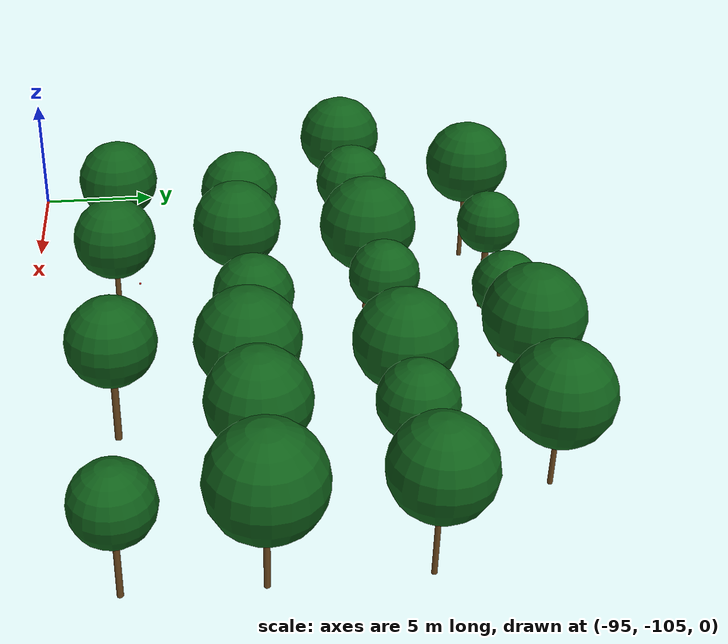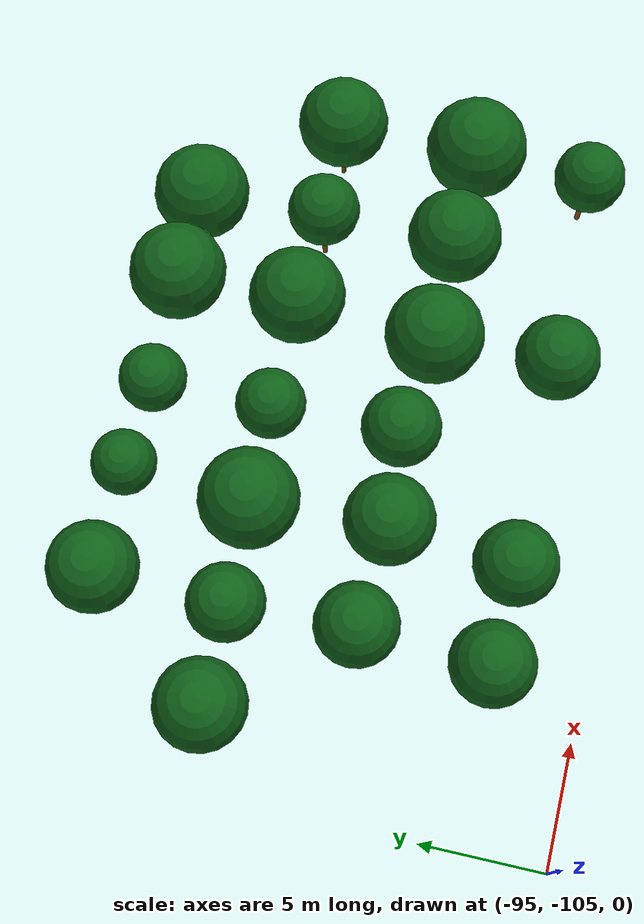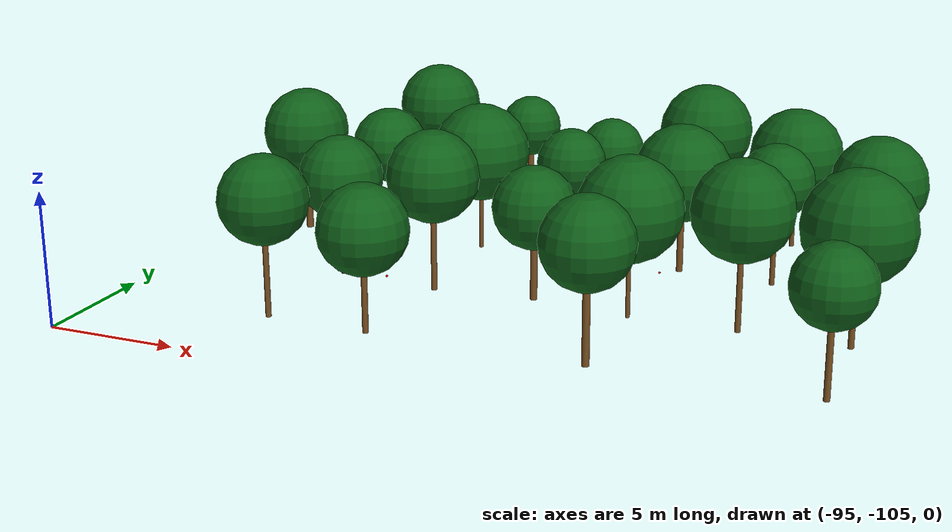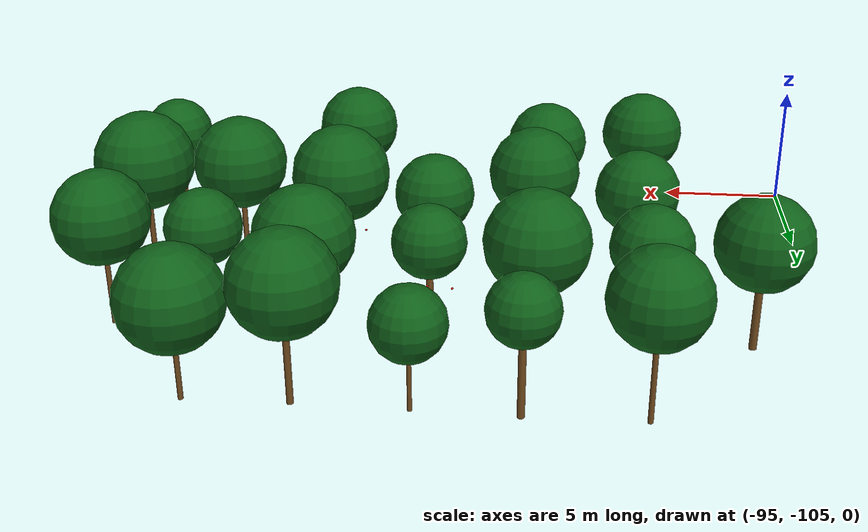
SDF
<sdf version="1.9">
 <world name="cheongsong_orchard">
  <model name="apple_tree_169">
   <static>true</static>
   <pose>-88.40 -101.20 0 0 0 0</pose>
   <link name="link">
    <collision name="trunk_col">
     <pose>0 0 1.39 0 0 0</pose>
     <geometry><cylinder><radius>0.105</radius><length>2.78</length></cylinder></geometry>
    </collision>
    <visual name="trunk_vis">
     <pose>0 0 1.39 0 0 0</pose>
     <geometry><cylinder><radius>0.105</radius><length>2.78</length></cylinder></geometry>
     <material><ambient>0.35 0.22 0.08 1</ambient><diffuse>0.45 0.30 0.12 1</diffuse></material>
    </visual>
    <collision name="canopy_col">
     <pose>0 0 4.42 0 0 0</pose>
     <geometry><sphere><radius>1.65</radius></sphere></geometry>
    </collision>
    <visual name="canopy_vis">
     <pose>0 0 4.42 0 0 0</pose>
     <geometry><sphere><radius>1.65</radius></sphere></geometry>
     <material><ambient>0.04 0.28 0.06 1</ambient><diffuse>0.06 0.38 0.10 1</diffuse></material>
    </visual>
   </link>
  </model>
  <model name="apple_tree_170">
   <static>true</static>
   <pose>-84.42 -101.32 0 0 0 0</pose>
   <link name="link">
    <collision name="trunk_col">
     <pose>0 0 1.09 0 0 0</pose>
     <geometry><cylinder><radius>0.110</radius><length>2.17</length></cylinder></geometry>
    </collision>
    <visual name="trunk_vis">
     <pose>0 0 1.09 0 0 0</pose>
     <geometry><cylinder><radius>0.110</radius><length>2.17</length></cylinder></geometry>
     <material><ambient>0.35 0.22 0.08 1</ambient><diffuse>0.45 0.30 0.12 1</diffuse></material>
    </visual>
    <collision name="canopy_col">
     <pose>0 0 3.82 0 0 0</pose>
     <geometry><sphere><radius>1.65</radius></sphere></geometry>
    </collision>
    <visual name="canopy_vis">
     <pose>0 0 3.82 0 0 0</pose>
     <geometry><sphere><radius>1.65</radius></sphere></geometry>
     <material><ambient>0.04 0.28 0.06 1</ambient><diffuse>0.06 0.38 0.10 1</diffuse></material>
    </visual>
   </link>
  </model>
  <model name="apple_tree_172">
   <static>true</static>
   <pose>-76.28 -101.27 0 0 0 0</pose>
   <link name="link">
    <collision name="trunk_col">
     <pose>0 0 1.33 0 0 0</pose>
     <geometry><cylinder><radius>0.134</radius><length>2.65</length></cylinder></geometry>
    </collision>
    <visual name="trunk_vis">
     <pose>0 0 1.33 0 0 0</pose>
     <geometry><cylinder><radius>0.134</radius><length>2.65</length></cylinder></geometry>
     <material><ambient>0.35 0.22 0.08 1</ambient><diffuse>0.45 0.30 0.12 1</diffuse></material>
    </visual>
    <collision name="canopy_col">
     <pose>0 0 4.31 0 0 0</pose>
     <geometry><sphere><radius>1.65</radius></sphere></geometry>
    </collision>
    <visual name="canopy_vis">
     <pose>0 0 4.31 0 0 0</pose>
     <geometry><sphere><radius>1.65</radius></sphere></geometry>
     <material><ambient>0.04 0.28 0.06 1</ambient><diffuse>0.06 0.38 0.10 1</diffuse></material>
    </visual>
   </link>
  </model>
  <model name="apple_tree_174">
   <static>true</static>
   <pose>-68.33 -101.09 0 0 0 0</pose>
   <link name="link">
    <collision name="trunk_col">
     <pose>0 0 1.21 0 0 0</pose>
     <geometry><cylinder><radius>0.111</radius><length>2.42</length></cylinder></geometry>
    </collision>
    <visual name="trunk_vis">
     <pose>0 0 1.21 0 0 0</pose>
     <geometry><cylinder><radius>0.111</radius><length>2.42</length></cylinder></geometry>
     <material><ambient>0.35 0.22 0.08 1</ambient><diffuse>0.45 0.30 0.12 1</diffuse></material>
    </visual>
    <collision name="canopy_col">
     <pose>0 0 3.84 0 0 0</pose>
     <geometry><sphere><radius>1.42</radius></sphere></geometry>
    </collision>
    <visual name="canopy_vis">
     <pose>0 0 3.84 0 0 0</pose>
     <geometry><sphere><radius>1.42</radius></sphere></geometry>
     <material><ambient>0.04 0.28 0.06 1</ambient><diffuse>0.06 0.38 0.10 1</diffuse></material>
    </visual>
   </link>
  </model>
  <model name="apple_tree_217">
   <static>true</static>
   <pose>-88.03 -96.05 0 0 0 0</pose>
   <link name="link">
    <collision name="trunk_col">
     <pose>0 0 1.14 0 0 0</pose>
     <geometry><cylinder><radius>0.083</radius><length>2.27</length></cylinder></geometry>
    </collision>
    <visual name="trunk_vis">
     <pose>0 0 1.14 0 0 0</pose>
     <geometry><cylinder><radius>0.083</radius><length>2.27</length></cylinder></geometry>
     <material><ambient>0.35 0.22 0.08 1</ambient><diffuse>0.45 0.30 0.12 1</diffuse></material>
    </visual>
    <collision name="canopy_col">
     <pose>0 0 3.91 0 0 0</pose>
     <geometry><sphere><radius>1.64</radius></sphere></geometry>
    </collision>
    <visual name="canopy_vis">
     <pose>0 0 3.91 0 0 0</pose>
     <geometry><sphere><radius>1.64</radius></sphere></geometry>
     <material><ambient>0.04 0.28 0.06 1</ambient><diffuse>0.06 0.38 0.10 1</diffuse></material>
    </visual>
   </link>
  </model>
  <model name="apple_tree_218">
   <static>true</static>
   <pose>-84.00 -96.38 0 0 0 0</pose>
   <link name="link">
    <collision name="trunk_col">
     <pose>0 0 1.35 0 0 0</pose>
     <geometry><cylinder><radius>0.113</radius><length>2.71</length></cylinder></geometry>
    </collision>
    <visual name="trunk_vis">
     <pose>0 0 1.35 0 0 0</pose>
     <geometry><cylinder><radius>0.113</radius><length>2.71</length></cylinder></geometry>
     <material><ambient>0.35 0.22 0.08 1</ambient><diffuse>0.45 0.30 0.12 1</diffuse></material>
    </visual>
    <collision name="canopy_col">
     <pose>0 0 4.47 0 0 0</pose>
     <geometry><sphere><radius>1.76</radius></sphere></geometry>
    </collision>
    <visual name="canopy_vis">
     <pose>0 0 4.47 0 0 0</pose>
     <geometry><sphere><radius>1.76</radius></sphere></geometry>
     <material><ambient>0.04 0.28 0.06 1</ambient><diffuse>0.06 0.38 0.10 1</diffuse></material>
    </visual>
   </link>
  </model>
  <model name="apple_tree_219">
   <static>true</static>
   <pose>-80.11 -96.00 0 0 0 0</pose>
   <link name="link">
    <collision name="trunk_col">
     <pose>0 0 1.01 0 0 0</pose>
     <geometry><cylinder><radius>0.134</radius><length>2.01</length></cylinder></geometry>
    </collision>
    <visual name="trunk_vis">
     <pose>0 0 1.01 0 0 0</pose>
     <geometry><cylinder><radius>0.134</radius><length>2.01</length></cylinder></geometry>
     <material><ambient>0.35 0.22 0.08 1</ambient><diffuse>0.45 0.30 0.12 1</diffuse></material>
    </visual>
    <collision name="canopy_col">
     <pose>0 0 3.58 0 0 0</pose>
     <geometry><sphere><radius>1.57</radius></sphere></geometry>
    </collision>
    <visual name="canopy_vis">
     <pose>0 0 3.58 0 0 0</pose>
     <geometry><sphere><radius>1.57</radius></sphere></geometry>
     <material><ambient>0.04 0.28 0.06 1</ambient><diffuse>0.06 0.38 0.10 1</diffuse></material>
    </visual>
   </link>
  </model>
  <model name="apple_tree_220">
   <static>true</static>
   <pose>-76.31 -96.46 0 0 0 0</pose>
   <link name="link">
    <collision name="trunk_col">
     <pose>0 0 1.07 0 0 0</pose>
     <geometry><cylinder><radius>0.083</radius><length>2.14</length></cylinder></geometry>
    </collision>
    <visual name="trunk_vis">
     <pose>0 0 1.07 0 0 0</pose>
     <geometry><cylinder><radius>0.083</radius><length>2.14</length></cylinder></geometry>
     <material><ambient>0.35 0.22 0.08 1</ambient><diffuse>0.45 0.30 0.12 1</diffuse></material>
    </visual>
    <collision name="canopy_col">
     <pose>0 0 4.09 0 0 0</pose>
     <geometry><sphere><radius>1.95</radius></sphere></geometry>
    </collision>
    <visual name="canopy_vis">
     <pose>0 0 4.09 0 0 0</pose>
     <geometry><sphere><radius>1.95</radius></sphere></geometry>
     <material><ambient>0.04 0.28 0.06 1</ambient><diffuse>0.06 0.38 0.10 1</diffuse></material>
    </visual>
   </link>
  </model>
  <model name="apple_tree_221">
   <static>true</static>
   <pose>-72.29 -96.38 0 0 0 0</pose>
   <link name="link">
    <collision name="trunk_col">
     <pose>0 0 1.31 0 0 0</pose>
     <geometry><cylinder><radius>0.106</radius><length>2.62</length></cylinder></geometry>
    </collision>
    <visual name="trunk_vis">
     <pose>0 0 1.31 0 0 0</pose>
     <geometry><cylinder><radius>0.106</radius><length>2.62</length></cylinder></geometry>
     <material><ambient>0.35 0.22 0.08 1</ambient><diffuse>0.45 0.30 0.12 1</diffuse></material>
    </visual>
    <collision name="canopy_col">
     <pose>0 0 4.46 0 0 0</pose>
     <geometry><sphere><radius>1.84</radius></sphere></geometry>
    </collision>
    <visual name="canopy_vis">
     <pose>0 0 4.46 0 0 0</pose>
     <geometry><sphere><radius>1.84</radius></sphere></geometry>
     <material><ambient>0.04 0.28 0.06 1</ambient><diffuse>0.06 0.38 0.10 1</diffuse></material>
    </visual>
   </link>
  </model>
  <model name="apple_tree_222">
   <static>true</static>
   <pose>-68.33 -96.44 0 0 0 0</pose>
   <link name="link">
    <collision name="trunk_col">
     <pose>0 0 1.18 0 0 0</pose>
     <geometry><cylinder><radius>0.110</radius><length>2.36</length></cylinder></geometry>
    </collision>
    <visual name="trunk_vis">
     <pose>0 0 1.18 0 0 0</pose>
     <geometry><cylinder><radius>0.110</radius><length>2.36</length></cylinder></geometry>
     <material><ambient>0.35 0.22 0.08 1</ambient><diffuse>0.45 0.30 0.12 1</diffuse></material>
    </visual>
    <collision name="canopy_col">
     <pose>0 0 4.36 0 0 0</pose>
     <geometry><sphere><radius>2.00</radius></sphere></geometry>
    </collision>
    <visual name="canopy_vis">
     <pose>0 0 4.36 0 0 0</pose>
     <geometry><sphere><radius>2.00</radius></sphere></geometry>
     <material><ambient>0.04 0.28 0.06 1</ambient><diffuse>0.06 0.38 0.10 1</diffuse></material>
    </visual>
   </link>
  </model>
  <model name="apple_tree_267">
   <static>true</static>
   <pose>-92.20 -91.20 0 0 0 0</pose>
   <link name="link">
    <collision name="trunk_col">
     <pose>0 0 1.25 0 0 0</pose>
     <geometry><cylinder><radius>0.145</radius><length>2.50</length></cylinder></geometry>
    </collision>
    <visual name="trunk_vis">
     <pose>0 0 1.25 0 0 0</pose>
     <geometry><cylinder><radius>0.145</radius><length>2.50</length></cylinder></geometry>
     <material><ambient>0.35 0.22 0.08 1</ambient><diffuse>0.45 0.30 0.12 1</diffuse></material>
    </visual>
    <collision name="canopy_col">
     <pose>0 0 4.27 0 0 0</pose>
     <geometry><sphere><radius>1.78</radius></sphere></geometry>
    </collision>
    <visual name="canopy_vis">
     <pose>0 0 4.27 0 0 0</pose>
     <geometry><sphere><radius>1.78</radius></sphere></geometry>
     <material><ambient>0.04 0.28 0.06 1</ambient><diffuse>0.06 0.38 0.10 1</diffuse></material>
    </visual>
   </link>
  </model>
  <model name="apple_tree_268">
   <static>true</static>
   <pose>-88.32 -91.15 0 0 0 0</pose>
   <link name="link">
    <collision name="trunk_col">
     <pose>0 0 1.24 0 0 0</pose>
     <geometry><cylinder><radius>0.143</radius><length>2.48</length></cylinder></geometry>
    </collision>
    <visual name="trunk_vis">
     <pose>0 0 1.24 0 0 0</pose>
     <geometry><cylinder><radius>0.143</radius><length>2.48</length></cylinder></geometry>
     <material><ambient>0.35 0.22 0.08 1</ambient><diffuse>0.45 0.30 0.12 1</diffuse></material>
    </visual>
    <collision name="canopy_col">
     <pose>0 0 4.00 0 0 0</pose>
     <geometry><sphere><radius>1.52</radius></sphere></geometry>
    </collision>
    <visual name="canopy_vis">
     <pose>0 0 4.00 0 0 0</pose>
     <geometry><sphere><radius>1.52</radius></sphere></geometry>
     <material><ambient>0.04 0.28 0.06 1</ambient><diffuse>0.06 0.38 0.10 1</diffuse></material>
    </visual>
   </link>
  </model>
  <model name="apple_tree_269">
   <static>true</static>
   <pose>-84.28 -91.03 0 0 0 0</pose>
   <link name="link">
    <collision name="trunk_col">
     <pose>0 0 1.05 0 0 0</pose>
     <geometry><cylinder><radius>0.083</radius><length>2.09</length></cylinder></geometry>
    </collision>
    <visual name="trunk_vis">
     <pose>0 0 1.05 0 0 0</pose>
     <geometry><cylinder><radius>0.083</radius><length>2.09</length></cylinder></geometry>
     <material><ambient>0.35 0.22 0.08 1</ambient><diffuse>0.45 0.30 0.12 1</diffuse></material>
    </visual>
    <collision name="canopy_col">
     <pose>0 0 4.06 0 0 0</pose>
     <geometry><sphere><radius>1.96</radius></sphere></geometry>
    </collision>
    <visual name="canopy_vis">
     <pose>0 0 4.06 0 0 0</pose>
     <geometry><sphere><radius>1.96</radius></sphere></geometry>
     <material><ambient>0.04 0.28 0.06 1</ambient><diffuse>0.06 0.38 0.10 1</diffuse></material>
    </visual>
   </link>
  </model>
  <model name="apple_tree_270">
   <static>true</static>
   <pose>-80.44 -90.94 0 0 0 0</pose>
   <link name="link">
    <collision name="trunk_col">
     <pose>0 0 1.29 0 0 0</pose>
     <geometry><cylinder><radius>0.132</radius><length>2.59</length></cylinder></geometry>
    </collision>
    <visual name="trunk_vis">
     <pose>0 0 1.29 0 0 0</pose>
     <geometry><cylinder><radius>0.132</radius><length>2.59</length></cylinder></geometry>
     <material><ambient>0.35 0.22 0.08 1</ambient><diffuse>0.45 0.30 0.12 1</diffuse></material>
    </visual>
    <collision name="canopy_col">
     <pose>0 0 3.96 0 0 0</pose>
     <geometry><sphere><radius>1.37</radius></sphere></geometry>
    </collision>
    <visual name="canopy_vis">
     <pose>0 0 3.96 0 0 0</pose>
     <geometry><sphere><radius>1.37</radius></sphere></geometry>
     <material><ambient>0.04 0.28 0.06 1</ambient><diffuse>0.06 0.38 0.10 1</diffuse></material>
    </visual>
   </link>
  </model>
  <model name="apple_tree_271">
   <static>true</static>
   <pose>-75.91 -90.90 0 0 0 0</pose>
   <link name="link">
    <collision name="trunk_col">
     <pose>0 0 1.05 0 0 0</pose>
     <geometry><cylinder><radius>0.126</radius><length>2.10</length></cylinder></geometry>
    </collision>
    <visual name="trunk_vis">
     <pose>0 0 1.05 0 0 0</pose>
     <geometry><cylinder><radius>0.126</radius><length>2.10</length></cylinder></geometry>
     <material><ambient>0.35 0.22 0.08 1</ambient><diffuse>0.45 0.30 0.12 1</diffuse></material>
    </visual>
    <collision name="canopy_col">
     <pose>0 0 4.01 0 0 0</pose>
     <geometry><sphere><radius>1.90</radius></sphere></geometry>
    </collision>
    <visual name="canopy_vis">
     <pose>0 0 4.01 0 0 0</pose>
     <geometry><sphere><radius>1.90</radius></sphere></geometry>
     <material><ambient>0.04 0.28 0.06 1</ambient><diffuse>0.06 0.38 0.10 1</diffuse></material>
    </visual>
   </link>
  </model>
  <model name="apple_tree_272">
   <static>true</static>
   <pose>-72.20 -91.10 0 0 0 0</pose>
   <link name="link">
    <collision name="trunk_col">
     <pose>0 0 1.34 0 0 0</pose>
     <geometry><cylinder><radius>0.100</radius><length>2.69</length></cylinder></geometry>
    </collision>
    <visual name="trunk_vis">
     <pose>0 0 1.34 0 0 0</pose>
     <geometry><cylinder><radius>0.100</radius><length>2.69</length></cylinder></geometry>
     <material><ambient>0.35 0.22 0.08 1</ambient><diffuse>0.45 0.30 0.12 1</diffuse></material>
    </visual>
    <collision name="canopy_col">
     <pose>0 0 4.12 0 0 0</pose>
     <geometry><sphere><radius>1.43</radius></sphere></geometry>
    </collision>
    <visual name="canopy_vis">
     <pose>0 0 4.12 0 0 0</pose>
     <geometry><sphere><radius>1.43</radius></sphere></geometry>
     <material><ambient>0.04 0.28 0.06 1</ambient><diffuse>0.06 0.38 0.10 1</diffuse></material>
    </visual>
   </link>
  </model>
  <model name="apple_tree_273">
   <static>true</static>
   <pose>-68.45 -91.03 0 0 0 0</pose>
   <link name="link">
    <collision name="trunk_col">
     <pose>0 0 1.29 0 0 0</pose>
     <geometry><cylinder><radius>0.096</radius><length>2.59</length></cylinder></geometry>
    </collision>
    <visual name="trunk_vis">
     <pose>0 0 1.29 0 0 0</pose>
     <geometry><cylinder><radius>0.096</radius><length>2.59</length></cylinder></geometry>
     <material><ambient>0.35 0.22 0.08 1</ambient><diffuse>0.45 0.30 0.12 1</diffuse></material>
    </visual>
    <collision name="canopy_col">
     <pose>0 0 4.38 0 0 0</pose>
     <geometry><sphere><radius>1.79</radius></sphere></geometry>
    </collision>
    <visual name="canopy_vis">
     <pose>0 0 4.38 0 0 0</pose>
     <geometry><sphere><radius>1.79</radius></sphere></geometry>
     <material><ambient>0.04 0.28 0.06 1</ambient><diffuse>0.06 0.38 0.10 1</diffuse></material>
    </visual>
   </link>
  </model>
  <model name="apple_tree_324">
   <static>true</static>
   <pose>-88.25 -86.15 0 0 0 0</pose>
   <link name="link">
    <collision name="trunk_col">
     <pose>0 0 1.46 0 0 0</pose>
     <geometry><cylinder><radius>0.096</radius><length>2.92</length></cylinder></geometry>
    </collision>
    <visual name="trunk_vis">
     <pose>0 0 1.46 0 0 0</pose>
     <geometry><cylinder><radius>0.096</radius><length>2.92</length></cylinder></geometry>
     <material><ambient>0.35 0.22 0.08 1</ambient><diffuse>0.45 0.30 0.12 1</diffuse></material>
    </visual>
    <collision name="canopy_col">
     <pose>0 0 4.66 0 0 0</pose>
     <geometry><sphere><radius>1.75</radius></sphere></geometry>
    </collision>
    <visual name="canopy_vis">
     <pose>0 0 4.66 0 0 0</pose>
     <geometry><sphere><radius>1.75</radius></sphere></geometry>
     <material><ambient>0.04 0.28 0.06 1</ambient><diffuse>0.06 0.38 0.10 1</diffuse></material>
    </visual>
   </link>
  </model>
  <model name="apple_tree_325">
   <static>true</static>
   <pose>-83.98 -86.10 0 0 0 0</pose>
   <link name="link">
    <collision name="trunk_col">
     <pose>0 0 1.39 0 0 0</pose>
     <geometry><cylinder><radius>0.133</radius><length>2.79</length></cylinder></geometry>
    </collision>
    <visual name="trunk_vis">
     <pose>0 0 1.39 0 0 0</pose>
     <geometry><cylinder><radius>0.133</radius><length>2.79</length></cylinder></geometry>
     <material><ambient>0.35 0.22 0.08 1</ambient><diffuse>0.45 0.30 0.12 1</diffuse></material>
    </visual>
    <collision name="canopy_col">
     <pose>0 0 4.06 0 0 0</pose>
     <geometry><sphere><radius>1.27</radius></sphere></geometry>
    </collision>
    <visual name="canopy_vis">
     <pose>0 0 4.06 0 0 0</pose>
     <geometry><sphere><radius>1.27</radius></sphere></geometry>
     <material><ambient>0.04 0.28 0.06 1</ambient><diffuse>0.06 0.38 0.10 1</diffuse></material>
    </visual>
   </link>
  </model>
  <model name="apple_tree_326">
   <static>true</static>
   <pose>-80.26 -86.16 0 0 0 0</pose>
   <link name="link">
    <collision name="trunk_col">
     <pose>0 0 1.00 0 0 0</pose>
     <geometry><cylinder><radius>0.081</radius><length>2.00</length></cylinder></geometry>
    </collision>
    <visual name="trunk_vis">
     <pose>0 0 1.00 0 0 0</pose>
     <geometry><cylinder><radius>0.081</radius><length>2.00</length></cylinder></geometry>
     <material><ambient>0.35 0.22 0.08 1</ambient><diffuse>0.45 0.30 0.12 1</diffuse></material>
    </visual>
    <collision name="canopy_col">
     <pose>0 0 3.34 0 0 0</pose>
     <geometry><sphere><radius>1.34</radius></sphere></geometry>
    </collision>
    <visual name="canopy_vis">
     <pose>0 0 3.34 0 0 0</pose>
     <geometry><sphere><radius>1.34</radius></sphere></geometry>
     <material><ambient>0.04 0.28 0.06 1</ambient><diffuse>0.06 0.38 0.10 1</diffuse></material>
    </visual>
   </link>
  </model>
  <model name="apple_tree_327">
   <static>true</static>
   <pose>-76.19 -86.23 0 0 0 0</pose>
   <link name="link">
    <collision name="trunk_col">
     <pose>0 0 1.36 0 0 0</pose>
     <geometry><cylinder><radius>0.120</radius><length>2.71</length></cylinder></geometry>
    </collision>
    <visual name="trunk_vis">
     <pose>0 0 1.36 0 0 0</pose>
     <geometry><cylinder><radius>0.120</radius><length>2.71</length></cylinder></geometry>
     <material><ambient>0.35 0.22 0.08 1</ambient><diffuse>0.45 0.30 0.12 1</diffuse></material>
    </visual>
    <collision name="canopy_col">
     <pose>0 0 4.60 0 0 0</pose>
     <geometry><sphere><radius>1.89</radius></sphere></geometry>
    </collision>
    <visual name="canopy_vis">
     <pose>0 0 4.60 0 0 0</pose>
     <geometry><sphere><radius>1.89</radius></sphere></geometry>
     <material><ambient>0.04 0.28 0.06 1</ambient><diffuse>0.06 0.38 0.10 1</diffuse></material>
    </visual>
   </link>
  </model>
  <model name="apple_tree_328">
   <static>true</static>
   <pose>-72.43 -86.17 0 0 0 0</pose>
   <link name="link">
    <collision name="trunk_col">
     <pose>0 0 1.00 0 0 0</pose>
     <geometry><cylinder><radius>0.095</radius><length>1.99</length></cylinder></geometry>
    </collision>
    <visual name="trunk_vis">
     <pose>0 0 1.00 0 0 0</pose>
     <geometry><cylinder><radius>0.095</radius><length>1.99</length></cylinder></geometry>
     <material><ambient>0.35 0.22 0.08 1</ambient><diffuse>0.45 0.30 0.12 1</diffuse></material>
    </visual>
    <collision name="canopy_col">
     <pose>0 0 3.89 0 0 0</pose>
     <geometry><sphere><radius>1.89</radius></sphere></geometry>
    </collision>
    <visual name="canopy_vis">
     <pose>0 0 3.89 0 0 0</pose>
     <geometry><sphere><radius>1.89</radius></sphere></geometry>
     <material><ambient>0.04 0.28 0.06 1</ambient><diffuse>0.06 0.38 0.10 1</diffuse></material>
    </visual>
   </link>
  </model>
  <model name="apple_170_2">
   <static>true</static>
   <pose>-83.99 -100.40 1.87 0 0 0</pose>
   <link name="link">
    <visual name="visual">
     <geometry><sphere><radius>0.04</radius></sphere></geometry>
     <material><ambient>0.7 0.05 0.02 1</ambient><diffuse>0.9 0.10 0.05 1</diffuse></material>
    </visual>
   </link>
  </model>
  <model name="apple_170_3">
   <static>true</static>
   <pose>-84.58 -101.06 2.51 0 0 0</pose>
   <link name="link">
    <visual name="visual">
     <geometry><sphere><radius>0.04</radius></sphere></geometry>
     <material><ambient>0.7 0.05 0.02 1</ambient><diffuse>0.9 0.10 0.05 1</diffuse></material>
    </visual>
   </link>
  </model>
  <model name="apple_220_0">
   <static>true</static>
   <pose>-77.38 -95.67 2.01 0 0 0</pose>
   <link name="link">
    <visual name="visual">
     <geometry><sphere><radius>0.04</radius></sphere></geometry>
     <material><ambient>0.7 0.05 0.02 1</ambient><diffuse>0.9 0.10 0.05 1</diffuse></material>
    </visual>
   </link>
  </model>
  <model name="apple_220_1">
   <static>true</static>
   <pose>-75.23 -96.21 1.76 0 0 0</pose>
   <link name="link">
    <visual name="visual">
     <geometry><sphere><radius>0.04</radius></sphere></geometry>
     <material><ambient>0.7 0.05 0.02 1</ambient><diffuse>0.9 0.10 0.05 1</diffuse></material>
    </visual>
   </link>
  </model>
  <model name="apple_220_2">
   <static>true</static>
   <pose>-76.08 -96.74 2.26 0 0 0</pose>
   <link name="link">
    <visual name="visual">
     <geometry><sphere><radius>0.04</radius></sphere></geometry>
     <material><ambient>0.7 0.05 0.02 1</ambient><diffuse>0.9 0.10 0.05 1</diffuse></material>
    </visual>
   </link>
  </model>
  <model name="apple_220_3">
   <static>true</static>
   <pose>-76.50 -95.17 1.96 0 0 0</pose>
   <link name="link">
    <visual name="visual">
     <geometry><sphere><radius>0.04</radius></sphere></geometry>
     <material><ambient>0.7 0.05 0.02 1</ambient><diffuse>0.9 0.10 0.05 1</diffuse></material>
    </visual>
   </link>
  </model>
  <model name="apple_220_4">
   <static>true</static>
   <pose>-77.00 -95.96 2.67 0 0 0</pose>
   <link name="link">
    <visual name="visual">
     <geometry><sphere><radius>0.04</radius></sphere></geometry>
     <material><ambient>0.7 0.05 0.02 1</ambient><diffuse>0.9 0.10 0.05 1</diffuse></material>
    </visual>
   </link>
  </model>
  <model name="apple_270_0">
   <static>true</static>
   <pose>-80.54 -90.19 2.30 0 0 0</pose>
   <link name="link">
    <visual name="visual">
     <geometry><sphere><radius>0.04</radius></sphere></geometry>
     <material><ambient>0.7 0.05 0.02 1</ambient><diffuse>0.9 0.10 0.05 1</diffuse></material>
    </visual>
   </link>
  </model>
  <model name="apple_270_1">
   <static>true</static>
   <pose>-79.75 -90.37 2.27 0 0 0</pose>
   <link name="link">
    <visual name="visual">
     <geometry><sphere><radius>0.04</radius></sphere></geometry>
     <material><ambient>0.7 0.05 0.02 1</ambient><diffuse>0.9 0.10 0.05 1</diffuse></material>
    </visual>
   </link>
  </model>
  <model name="apple_270_2">
   <static>true</static>
   <pose>-79.47 -90.61 2.26 0 0 0</pose>
   <link name="link">
    <visual name="visual">
     <geometry><sphere><radius>0.04</radius></sphere></geometry>
     <material><ambient>0.7 0.05 0.02 1</ambient><diffuse>0.9 0.10 0.05 1</diffuse></material>
    </visual>
   </link>
  </model>
  <model name="apple_270_3">
   <static>true</static>
   <pose>-80.40 -90.56 2.36 0 0 0</pose>
   <link name="link">
    <visual name="visual">
     <geometry><sphere><radius>0.04</radius></sphere></geometry>
     <material><ambient>0.7 0.05 0.02 1</ambient><diffuse>0.9 0.10 0.05 1</diffuse></material>
    </visual>
   </link>
  </model>
  <model name="apple_270_4">
   <static>true</static>
   <pose>-81.27 -90.79 2.17 0 0 0</pose>
   <link name="link">
    <visual name="visual">
     <geometry><sphere><radius>0.04</radius></sphere></geometry>
     <material><ambient>0.7 0.05 0.02 1</ambient><diffuse>0.9 0.10 0.05 1</diffuse></material>
    </visual>
   </link>
  </model>
 </world>
</sdf>
